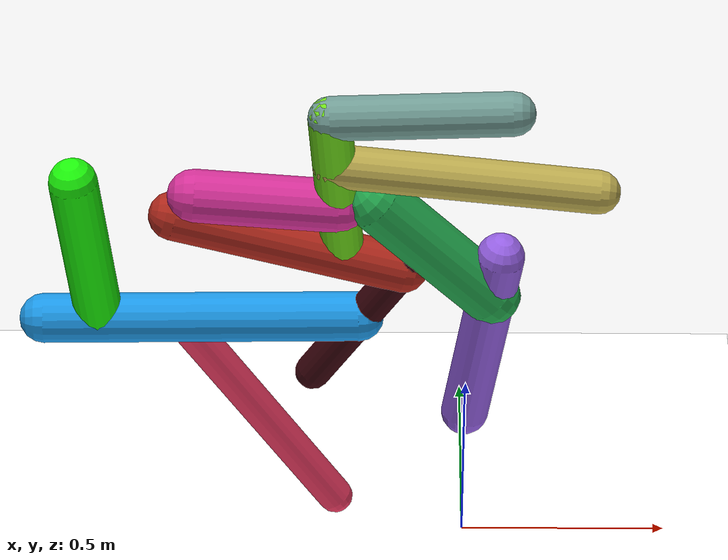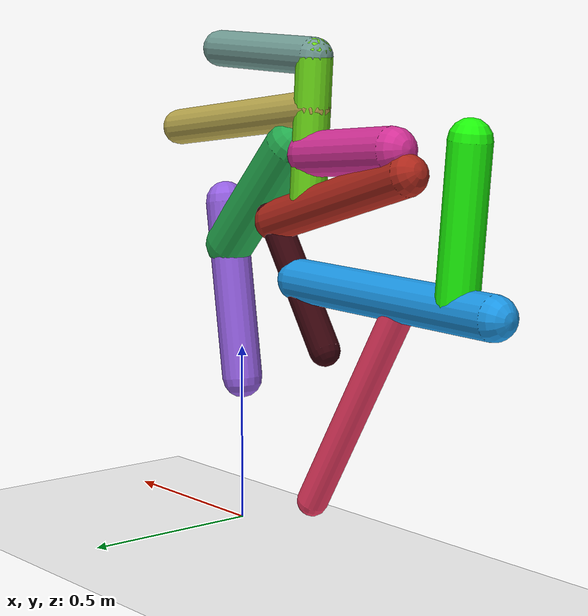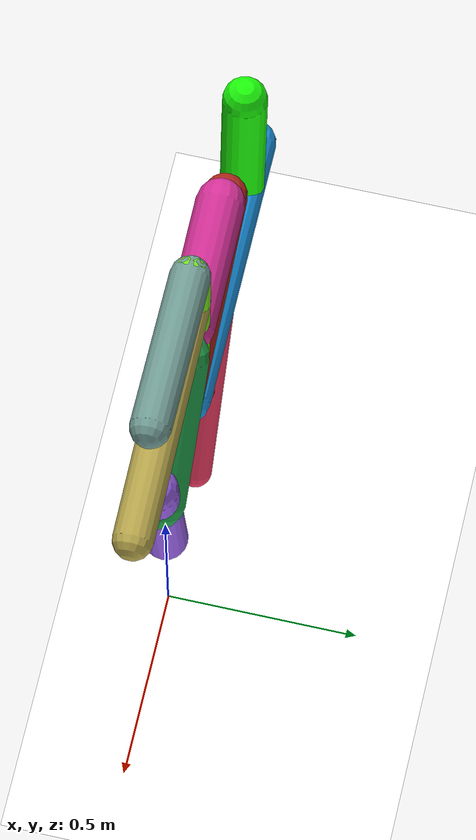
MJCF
<mujoco model="morphology">
  <option timestep="0.01"/>
  <default>
    <default class="/"/>
  </default>
  <asset>
    <texture name="texplane" type="2d" builtin="checker" rgb1="0.1 0.2 0.3" rgb2="0.2 0.3 0.4" width="300" height="300"/>
    <material name="MatPlane" class="/" texture="texplane" texrepeat="20 20" specular="1" shininess="1" reflectance="0.5"/>
  </asset>
  <worldbody>
    <light name="//unnamed_light_0" class="/" directional="true" pos="0 0 1.5" dir="0 0 -1.3" cutoff="1e+02" exponent="1" diffuse="1 1 1" specular="0.1 0.1 0.1"/>
    <geom name="ground" class="/" type="plane" size="15 15 0.5" material="MatPlane" rgba="1 1 1 1"/>
    <body name="body" pos="0 0 0.41">
      <geom name="geom0" class="/" type="capsule" contype="1" conaffinity="1" condim="3" size="0.057" rgba="0.59 0.38 0.9 1" friction="0.4 0.1 0.1" fromto="0 0 0 0.074 0 0.5"/>
      <body name="body1" pos="0.056 0 0.38">
        <geom name="geom1" class="/" type="capsule" contype="1" conaffinity="1" condim="3" size="0.069" rgba="0.14 0.67 0.31 1" friction="0.4 0.1 0.1" fromto="0 0 0 -0.27 0 0.29"/>
        <body name="body2" pos="-0.15 0 0.17">
          <geom name="geom2" class="/" type="capsule" contype="1" conaffinity="1" condim="3" size="0.043" rgba="0.22 0.013 0.047 1" friction="0.4 0.1 0.1" fromto="0 0 0 -0.27 0 -0.42"/>
          <body name="body3" pos="-0.056 0 -0.087">
            <geom name="geom3" class="/" type="capsule" contype="1" conaffinity="1" condim="3" size="0.057" rgba="0.69 0.16 0.11 1" friction="0.4 0.1 0.1" fromto="0 0 0 -0.53 0 0.16"/>
            <body name="body4" pos="-0.14 0 0.042">
              <geom name="geom4" class="/" type="capsule" contype="1" conaffinity="1" condim="3" size="0.05" rgba="0.44 0.88 0.1 1" friction="0.4 0.1 0.1" fromto="0 0 0 -0.028 0 0.41"/>
              <body name="body5" pos="-0.027 0 0.41">
                <geom name="geom5" class="/" type="capsule" contype="1" conaffinity="1" condim="3" size="0.051" rgba="0.45 0.62 0.59 1" friction="0.4 0.1 0.1" fromto="0 0 0 0.41 0 0.016"/>
                <joint name="joint5" class="/" type="hinge" axis="0 1 0" limited="true" stiffness="20" range="-57 57" armature="0.1" damping="2"/>
              </body>
              <body name="body6" pos="-0.01 0 0.15">
                <geom name="geom6" class="/" type="capsule" contype="1" conaffinity="1" condim="3" size="0.062" rgba="0.84 0.19 0.6 1" friction="0.4 0.1 0.1" fromto="0 0 0 -0.33 0 0.029"/>
                <joint name="joint6" class="/" type="hinge" axis="0 1 0" limited="true" stiffness="20" range="-47 47" armature="0.1" damping="2"/>
              </body>
              <body name="body7" pos="-0.018 0 0.27">
                <geom name="geom7" class="/" type="capsule" contype="1" conaffinity="1" condim="3" size="0.051" rgba="0.74 0.67 0.31 1" friction="0.4 0.1 0.1" fromto="0 0 0 0.6 0 -0.074"/>
                <joint name="joint7" class="/" type="hinge" axis="0 1 0" limited="true" stiffness="20" range="-30 30" armature="0.1" damping="2"/>
              </body>
              <joint name="joint4" class="/" type="hinge" axis="0 1 0" limited="true" stiffness="20" range="-66 66" armature="0.1" damping="2"/>
            </body>
            <joint name="joint3" class="/" type="hinge" axis="0 1 0" limited="true" stiffness="20" range="-39 39" armature="0.1" damping="2"/>
          </body>
          <body name="body8" pos="-0.16 0 -0.24">
            <geom name="geom8" class="/" type="capsule" contype="1" conaffinity="1" condim="3" size="0.059" rgba="0.11 0.6 0.91 1" friction="0.4 0.1 0.1" fromto="0 0 0 -0.74 0 -0.0098"/>
            <body name="body9" pos="-0.42 0 -0.0055">
              <geom name="geom9" class="/" type="capsule" contype="1" conaffinity="1" condim="3" size="0.043" rgba="0.96 0.24 0.4 1" friction="0.4 0.1 0.1" fromto="0 0 0 0.36 0 -0.6"/>
            </body>
            <body name="body10" pos="-0.61 0 -0.0081">
              <geom name="geom10" class="/" type="capsule" contype="1" conaffinity="1" condim="3" size="0.057" rgba="0.11 0.99 0.038 1" friction="0.4 0.1 0.1" fromto="0 0 0 -0.039 0 0.42"/>
              <joint name="joint10" class="/" type="hinge" axis="0 1 0" limited="true" stiffness="20" range="-54 54" armature="0.1" damping="2"/>
            </body>
            <joint name="joint8" class="/" type="hinge" axis="0 1 0" limited="true" stiffness="20" range="-53 53" armature="0.1" damping="2"/>
          </body>
        </body>
        <joint name="joint1" class="/" type="hinge" axis="0 1 0" limited="true" stiffness="20" range="-48 48" armature="0.1" damping="2"/>
      </body>
      <joint name="rootx" class="/" type="slide" axis="1 0 0" limited="false" stiffness="0" armature="0" damping="0"/>
      <joint name="rootz" class="/" type="slide" axis="0 0 1" limited="false" stiffness="0" armature="0" damping="0"/>
      <joint name="rooty" class="/" type="hinge" axis="0 1 0" limited="false" stiffness="0" armature="0" damping="0"/>
    </body>
  </worldbody>
  <actuator>
    <motor name="motor5" class="/" ctrllimited="true" ctrlrange="-1 1" gear="1.6e+02" joint="joint5"/>
    <motor name="motor6" class="/" ctrllimited="true" ctrlrange="-1 1" gear="1.7e+02" joint="joint6"/>
    <motor name="motor7" class="/" ctrllimited="true" ctrlrange="-1 1" gear="1.6e+02" joint="joint7"/>
    <motor name="motor4" class="/" ctrllimited="true" ctrlrange="-1 1" gear="2e+02" joint="joint4"/>
    <motor name="motor3" class="/" ctrllimited="true" ctrlrange="-1 1" gear="1.1e+02" joint="joint3"/>
    <motor name="motor10" class="/" ctrllimited="true" ctrlrange="-1 1" gear="1.7e+02" joint="joint10"/>
    <motor name="motor8" class="/" ctrllimited="true" ctrlrange="-1 1" gear="1.4e+02" joint="joint8"/>
    <motor name="motor1" class="/" ctrllimited="true" ctrlrange="-1 1" gear="1.2e+02" joint="joint1"/>
  </actuator>
  <sensor>
    <subtreelinvel name="velocity" body="body"/>
  </sensor>
</mujoco>
